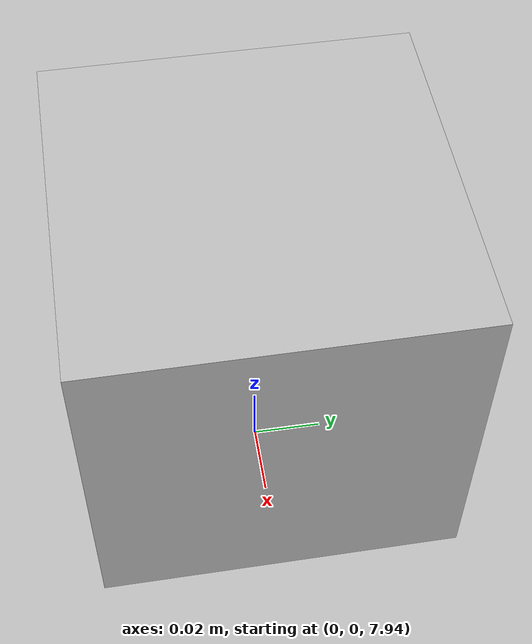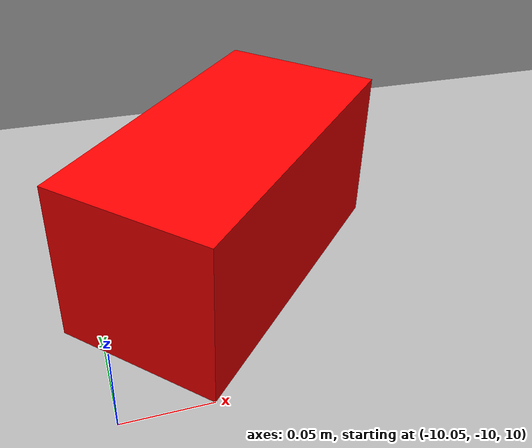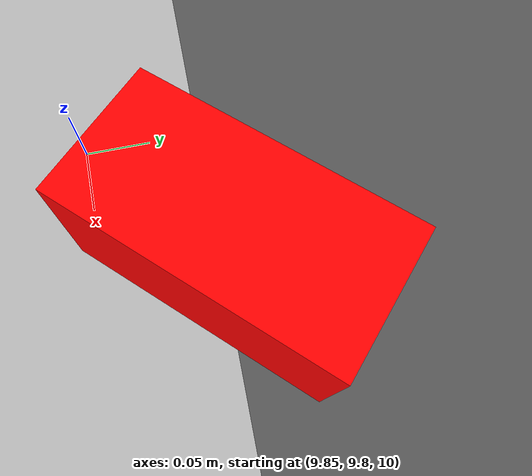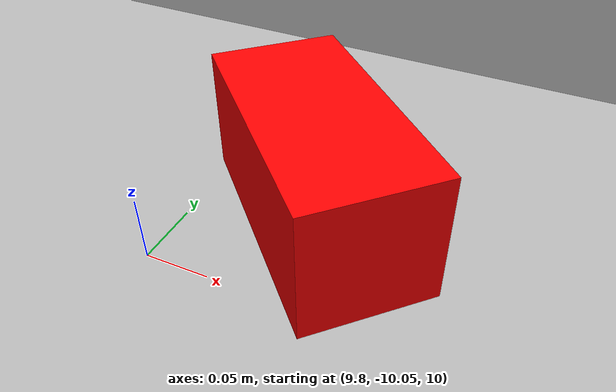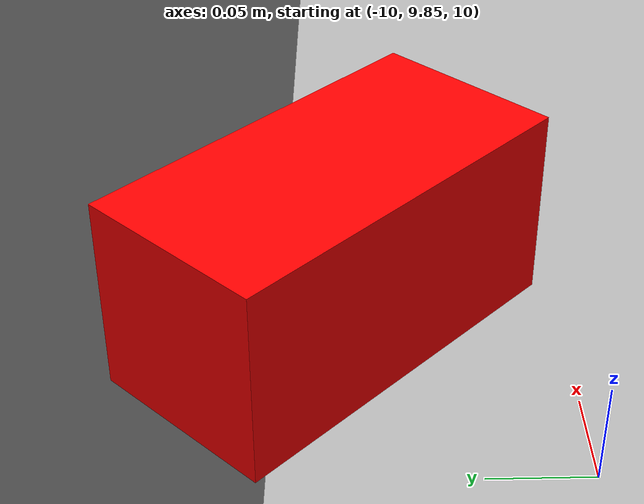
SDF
<sdf version="1.8">
  <world name="purdue">
    <gravity>0 0 0</gravity>
    <physics name="1ms" type="ode">
      <max_step_size>0.001</max_step_size>
      <real_time_factor>1.0</real_time_factor>
      <real_time_update_rate>250</real_time_update_rate>
    </physics>
    <plugin
      filename="gz-sim-physics-system"
      name="gz::sim::systems::Physics">
    </plugin>
    <plugin
      filename="gz-sim-sensors-system"
      name="gz::sim::systems::Sensors">
      <render_engine>ogre</render_engine>
    </plugin>
    <plugin
      filename="gz-sim-user-commands-system"
      name="gz::sim::systems::UserCommands">
    </plugin>
    <plugin
      filename="gz-sim-scene-broadcaster-system"
      name="gz::sim::systems::SceneBroadcaster">
    </plugin>
    <plugin
      filename="gz-sim-imu-system"
      name="gz::sim::systems::Imu">
    </plugin>
    <plugin
      filename="gz-sim-air-pressure-system"
      name="gz::sim::systems::AirPressure">
    </plugin>
    <plugin
      filename="gz-sim-contact-system"
      name="gz::sim::systems::Contact">
    </plugin>

    <scene>
      <ambient>1.0 1.0 1.0</ambient>
      <background>0.8 0.8 0.8</background>
      <grid>true</grid>
    </scene>

    <light name="sun" type="directional">
      <cast_shadows>true</cast_shadows>
      <pose>0 0 10 0 0 0</pose>
      <diffuse>0.8 0.8 0.8 1</diffuse>
      <specular>0.2 0.2 0.2 1</specular>
      <attenuation>
        <range>1000</range>
        <constant>0.9</constant>
        <linear>0.01</linear>
        <quadratic>0.001</quadratic>
      </attenuation>
      <direction>-0.5 0.1 -0.9</direction>
    </light>

    <include>
      <uri>model://purdue</uri>
      <name>purdue</name>
      <pose>120 -338 0 0 0 0</pose>
    </include>

    <model name="box">
      <pose>0 0 8 0 0 0</pose>
      <static>1</static>
      <link name="link">
          <visual name="visual">
            <geometry>
              <box>
                <size>.1 .1 .1</size>
              </box>
            </geometry>
            <material>
              <emissive>1 1 1 1</emissive>
            </material>
          </visual>
      </link>
    </model>

    <model name="camera_0">
      <pose>10 10 10.0 0 0.0 -2.35</pose>
      <static>1</static>
      <link name="link">
        <pose>0.1 0.05 0.05 0 0 0</pose>
        <visual name="visual">
          <geometry>
            <box>
              <size>0.2 0.1 0.1</size>
            </box>
          </geometry>
          <material>
            <ambient>0.5, 0, 0, 0</ambient>
            <diffuse>1.0, 0, 0, 0</diffuse>
            <emissive>1 1 1 1</emissive>
          </material>
        </visual>
        <sensor name="camera_0" type="camera">
          <camera>
            <horizontal_fov>1.5</horizontal_fov>
            <image>
              <width>640</width>
              <height>480</height>
            </image>
            <clip>
              <near>0.1</near>
              <far>2000</far>
            </clip>
            <camera_info_topic>camera_0/info</camera_info_topic>
          </camera>
          <always_on>1</always_on>
          <update_rate>30</update_rate>
          <visualize>true</visualize>
          <topic>camera_0/image</topic>
        </sensor>
      </link>
    </model>

    <model name="camera_1">
      <pose>-10 10 10.0 0 0.0 -0.78</pose>
      <static>1</static>
      <link name="link">
        <pose>0.1 0.05 0.05 0 0 0</pose>
        <inertial>
          <mass>0.1</mass>
          <inertia>
            <ixx>0.000166667</ixx>
            <iyy>0.000166667</iyy>
            <izz>0.000166667</izz>
          </inertia>
        </inertial>
        <visual name="visual">
          <geometry>
            <box>
              <size>0.2 0.1 0.1</size>
            </box>
          </geometry>
          <material>
            <ambient>0.5, 0, 0, 0</ambient>
            <diffuse>1.0, 0, 0, 0</diffuse>
            <emissive>1 1 1 1</emissive>
          </material>
        </visual>
        <sensor name="camera_1" type="camera">
          <camera>
            <horizontal_fov>1.5</horizontal_fov>
            <image>
              <width>640</width>
              <height>480</height>
            </image>
            <clip>
              <near>0.1</near>
              <far>2000</far>
            </clip>
            <camera_info_topic>camera_1/info</camera_info_topic>
          </camera>
          <always_on>1</always_on>
          <update_rate>30</update_rate>
          <visualize>true</visualize>
          <topic>camera_1/image</topic>
        </sensor>
      </link>
    </model>

    <model name="camera_2">
      <pose>-10 -10 10.0 0 0.0 0.78</pose>
      <static>1</static>
      <link name="link">
        <pose>0.1 0.05 0.05 0 0 0</pose>
        <inertial>
          <mass>0.1</mass>
          <inertia>
            <ixx>0.000166667</ixx>
            <iyy>0.000166667</iyy>
            <izz>0.000166667</izz>
          </inertia>
        </inertial>
        <visual name="visual">
          <geometry>
            <box>
              <size>0.2 0.1 0.1</size>
            </box>
          </geometry>
          <material>
            <ambient>0.5, 0, 0, 0</ambient>
            <diffuse>1.0, 0, 0, 0</diffuse>
            <emissive>1 1 1 1</emissive>
          </material>
        </visual>
        <sensor name="camera_2" type="camera">
          <camera>
            <horizontal_fov>1.5</horizontal_fov>
            <image>
              <width>640</width>
              <height>480</height>
            </image>
            <clip>
              <near>0.1</near>
              <far>2000</far>
            </clip>
            <camera_info_topic>camera_2/info</camera_info_topic>
          </camera>
          <always_on>1</always_on>
          <update_rate>30</update_rate>
          <visualize>true</visualize>
          <topic>camera_2/image</topic>
        </sensor>
      </link>
    </model>

    <model name="camera_3">
      <pose>10 -10 10.0 0 0.0 2.35</pose>
      <static>1</static>
      <link name="link">
        <pose>0.1 0.05 0.05 0 0 0</pose>
        <inertial>
          <mass>0.1</mass>
          <inertia>
            <ixx>0.000166667</ixx>
            <iyy>0.000166667</iyy>
            <izz>0.000166667</izz>
          </inertia>
        </inertial>
        <visual name="visual">
          <geometry>
            <box>
              <size>0.2 0.1 0.1</size>
            </box>
          </geometry>
          <material>
            <ambient>0.5, 0, 0, 0</ambient>
            <diffuse>1.0, 0, 0, 0</diffuse>
            <emissive>1 1 1 1</emissive>
          </material>
        </visual>
        <sensor name="camera_3" type="camera">
          <camera>
            <horizontal_fov>1.5</horizontal_fov>
            <image>
              <width>640</width>
              <height>480</height>
            </image>
            <clip>
              <near>0.1</near>
              <far>2000</far>
            </clip>
            <camera_info_topic>camera_3/info</camera_info_topic>
          </camera>
          <always_on>1</always_on>
          <update_rate>30</update_rate>
          <visualize>true</visualize>
          <topic>camera_3/image</topic>
        </sensor>
      </link>
    </model>

  </world>
</sdf>

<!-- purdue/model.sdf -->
<sdf version='1.9'>
  <model name='purdue'>
    <pose>0 0 0 0 0 0</pose>
    <static>true</static>

    <link name="buildings">
      <visual name="visual">
        <geometry>
          <mesh>
            <uri>model://purdue/media/buildings.dae</uri>
          </mesh>
        </geometry>
        <pose>0 0 -.5 0 0 0</pose>
      </visual>
      <collision name="collision">
        <geometry>
          <mesh>
            <uri>model://purdue/media/buildings.dae</uri>
          </mesh>
        </geometry>
        <pose>0 0 -.5 0 0 0</pose>
      </collision>
    </link>

  </model>
</sdf>
